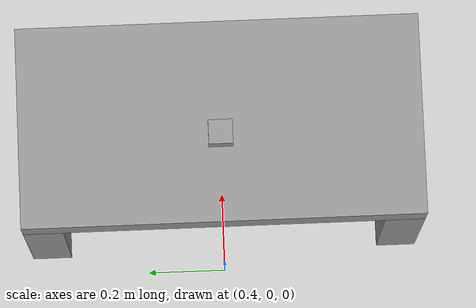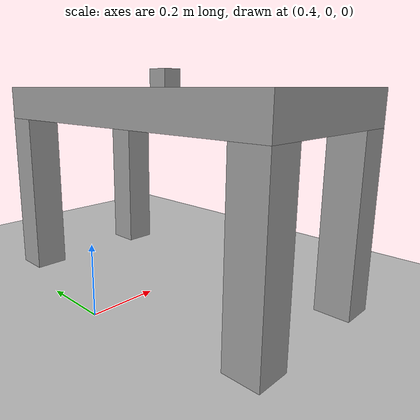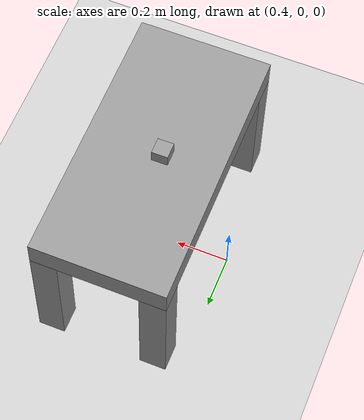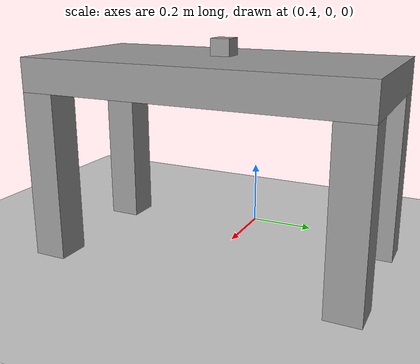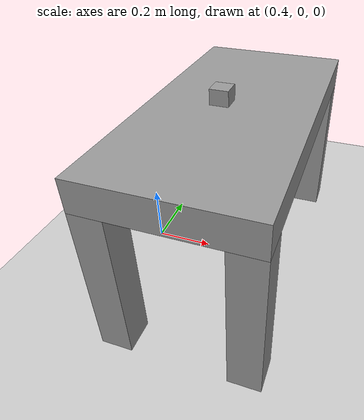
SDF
<sdf version="1.6">
 <world name="default">
  <light name="sun" type="directional">
   <pose>0 0 10 0 -0 0</pose>
   <diffuse>0.8 0.8 0.8 1</diffuse>
   <specular>0.2 0.2 0.2 1</specular>
   <attenuation>
    <range>1000</range>
    <constant>0.9</constant>
    <linear>0.01</linear>
    <quadratic>0.001</quadratic>
   </attenuation>
   <direction>-0.5 0.1 -0.9</direction>
  </light>
  <model name="ground_plane">
   <static>1</static>
   <link name="link">
    <collision name="collision">
     <geometry><plane><normal>0 0 1</normal><size>100 100</size></plane></geometry>
     <surface>
      <contact><collide_bitmask>65535</collide_bitmask></contact>
      <friction><ode><mu>100</mu><mu2>50</mu2></ode></friction>
     </surface>
    </collision>
    <visual name="visual">
     <cast_shadows>0</cast_shadows>
     <geometry><plane><normal>0 0 1</normal><size>100 100</size></plane></geometry>
     <material>
      <script><uri>file://media/materials/scripts/gazebo.material</uri><name>Gazebo/Grey</name></script>
     </material>
    </visual>
   </link>
  </model>
  <gravity>0 0 -9.8</gravity>
  <magnetic_field>6e-06 2.3e-05 -4.2e-05</magnetic_field>
  <atmosphere type="adiabatic"/>
  <physics name="default_physics" default="0" type="ode">
   <max_step_size>0.001</max_step_size>
   <real_time_factor>1</real_time_factor>
   <real_time_update_rate>1000</real_time_update_rate>
  </physics>
  <scene><ambient>0.4 0.4 0.4 1</ambient><background>0.7 0.7 0.7 1</background><shadows>1</shadows></scene>
  <audio><device>default</device></audio>
  <spherical_coordinates>
   <surface_model>EARTH_WGS84</surface_model>
   <latitude_deg>0</latitude_deg>
   <longitude_deg>0</longitude_deg>
   <elevation>0</elevation>
   <heading_deg>0</heading_deg>
  </spherical_coordinates>
  <model name="Franka_table">
   <link name="link_0">
    <inertial>
     <mass>1</mass>
     <inertia>
      <ixx>0.166667</ixx>
      <ixy>0</ixy>
      <ixz>0</ixz>
      <iyy>0.166667</iyy>
      <iyz>0</iyz>
      <izz>0.166667</izz>
     </inertia>
    </inertial>
    <pose>-0.2 -0.45 -0.06 0 -0 0</pose>
    <visual name="visual">
     <geometry><box><size>0.1 0.1 0.5</size></box></geometry>
     <material>
      <lighting>1</lighting>
      <script><uri>file://media/materials/scripts/gazebo.material</uri><name>Gazebo/Grey</name></script>
      <shader type="pixel"><normal_map>__default__</normal_map></shader>
      <ambient>0.3 0.3 0.3 1</ambient>
      <diffuse>0.7 0.7 0.7 1</diffuse>
      <specular>0.01 0.01 0.01 1</specular>
      <emissive>0 0 0 1</emissive>
     </material>
    </visual>
    <collision name="collision">
     <geometry><box><size>0.1 0.1 0.5</size></box></geometry>
     <surface>
      <friction>
       <ode><mu>1</mu><mu2>1</mu2><fdir1>0 0 0</fdir1><slip1>0</slip1><slip2>0</slip2></ode>
       <torsional>
        <coefficient>1</coefficient>
        <patch_radius>0</patch_radius>
        <surface_radius>0</surface_radius>
        <use_patch_radius>1</use_patch_radius>
        <ode><slip>0</slip></ode>
       </torsional>
      </friction>
      <bounce><restitution_coefficient>0</restitution_coefficient><threshold>1e+06</threshold></bounce>
      <contact>
       <collide_without_contact>0</collide_without_contact>
       <collide_without_contact_bitmask>1</collide_without_contact_bitmask>
       <collide_bitmask>1</collide_bitmask>
       <ode>
        <soft_cfm>0</soft_cfm>
        <soft_erp>0.2</soft_erp>
        <kp>1e+13</kp>
        <kd>1</kd>
        <max_vel>0.01</max_vel>
        <min_depth>0</min_depth>
       </ode>
       <bullet>
        <split_impulse>1</split_impulse>
        <split_impulse_penetration_threshold>-0.01</split_impulse_penetration_threshold>
        <soft_cfm>0</soft_cfm>
        <soft_erp>0.2</soft_erp>
        <kp>1e+13</kp>
        <kd>1</kd>
       </bullet>
      </contact>
     </surface>
    </collision>
   </link>
   <link name="link_0_clone">
    <inertial>
     <mass>1</mass>
     <inertia>
      <ixx>0.166667</ixx>
      <ixy>0</ixy>
      <ixz>0</ixz>
      <iyy>0.166667</iyy>
      <iyz>0</iyz>
      <izz>0.166667</izz>
     </inertia>
    </inertial>
    <pose>-0.2 0.45 -0.06 0 -0 0</pose>
    <visual name="visual">
     <geometry><box><size>0.1 0.1 0.5</size></box></geometry>
     <material>
      <lighting>1</lighting>
      <script><uri>file://media/materials/scripts/gazebo.material</uri><name>Gazebo/Grey</name></script>
      <shader type="pixel"><normal_map>__default__</normal_map></shader>
      <ambient>0.3 0.3 0.3 1</ambient>
      <diffuse>0.7 0.7 0.7 1</diffuse>
      <specular>0.01 0.01 0.01 1</specular>
      <emissive>0 0 0 1</emissive>
     </material>
    </visual>
    <collision name="collision">
     <geometry><box><size>0.1 0.1 0.5</size></box></geometry>
     <surface>
      <friction>
       <ode><mu>1</mu><mu2>1</mu2><fdir1>0 0 0</fdir1><slip1>0</slip1><slip2>0</slip2></ode>
       <torsional>
        <coefficient>1</coefficient>
        <patch_radius>0</patch_radius>
        <surface_radius>0</surface_radius>
        <use_patch_radius>1</use_patch_radius>
        <ode><slip>0</slip></ode>
       </torsional>
      </friction>
      <bounce><restitution_coefficient>0</restitution_coefficient><threshold>1e+06</threshold></bounce>
      <contact>
       <collide_without_contact>0</collide_without_contact>
       <collide_without_contact_bitmask>1</collide_without_contact_bitmask>
       <collide_bitmask>1</collide_bitmask>
       <ode>
        <soft_cfm>0</soft_cfm>
        <soft_erp>0.2</soft_erp>
        <kp>1e+13</kp>
        <kd>1</kd>
        <max_vel>0.01</max_vel>
        <min_depth>0</min_depth>
       </ode>
       <bullet>
        <split_impulse>1</split_impulse>
        <split_impulse_penetration_threshold>-0.01</split_impulse_penetration_threshold>
        <soft_cfm>0</soft_cfm>
        <soft_erp>0.2</soft_erp>
        <kp>1e+13</kp>
        <kd>1</kd>
       </bullet>
      </contact>
     </surface>
    </collision>
   </link>
   <link name="link_0_clone_0">
    <inertial>
     <mass>1</mass>
     <inertia>
      <ixx>0.166667</ixx>
      <ixy>0</ixy>
      <ixz>0</ixz>
      <iyy>0.166667</iyy>
      <iyz>0</iyz>
      <izz>0.166667</izz>
     </inertia>
    </inertial>
    <pose>0.2 0.45 -0.06 0 -0 0</pose>
    <visual name="visual">
     <geometry><box><size>0.1 0.1 0.5</size></box></geometry>
     <material>
      <lighting>1</lighting>
      <script><uri>file://media/materials/scripts/gazebo.material</uri><name>Gazebo/Grey</name></script>
      <shader type="pixel"><normal_map>__default__</normal_map></shader>
      <ambient>0.3 0.3 0.3 1</ambient>
      <diffuse>0.7 0.7 0.7 1</diffuse>
      <specular>0.01 0.01 0.01 1</specular>
      <emissive>0 0 0 1</emissive>
     </material>
    </visual>
    <collision name="collision">
     <geometry><box><size>0.1 0.1 0.5</size></box></geometry>
     <surface>
      <friction>
       <ode><mu>1</mu><mu2>1</mu2><fdir1>0 0 0</fdir1><slip1>0</slip1><slip2>0</slip2></ode>
       <torsional>
        <coefficient>1</coefficient>
        <patch_radius>0</patch_radius>
        <surface_radius>0</surface_radius>
        <use_patch_radius>1</use_patch_radius>
        <ode><slip>0</slip></ode>
       </torsional>
      </friction>
      <bounce><restitution_coefficient>0</restitution_coefficient><threshold>1e+06</threshold></bounce>
      <contact>
       <collide_without_contact>0</collide_without_contact>
       <collide_without_contact_bitmask>1</collide_without_contact_bitmask>
       <collide_bitmask>1</collide_bitmask>
       <ode>
        <soft_cfm>0</soft_cfm>
        <soft_erp>0.2</soft_erp>
        <kp>1e+13</kp>
        <kd>1</kd>
        <max_vel>0.01</max_vel>
        <min_depth>0</min_depth>
       </ode>
       <bullet>
        <split_impulse>1</split_impulse>
        <split_impulse_penetration_threshold>-0.01</split_impulse_penetration_threshold>
        <soft_cfm>0</soft_cfm>
        <soft_erp>0.2</soft_erp>
        <kp>1e+13</kp>
        <kd>1</kd>
       </bullet>
      </contact>
     </surface>
    </collision>
   </link>
   <link name="link_0_clone_1">
    <inertial>
     <mass>1</mass>
     <inertia>
      <ixx>0.166667</ixx>
      <ixy>0</ixy>
      <ixz>0</ixz>
      <iyy>0.166667</iyy>
      <iyz>0</iyz>
      <izz>0.166667</izz>
     </inertia>
    </inertial>
    <pose>0.2 -0.45 -0.06 0 -0 0</pose>
    <visual name="visual">
     <geometry><box><size>0.1 0.1 0.5</size></box></geometry>
     <material>
      <lighting>1</lighting>
      <script><uri>file://media/materials/scripts/gazebo.material</uri><name>Gazebo/Grey</name></script>
      <shader type="pixel"><normal_map>__default__</normal_map></shader>
      <ambient>0.3 0.3 0.3 1</ambient>
      <diffuse>0.7 0.7 0.7 1</diffuse>
      <specular>0.01 0.01 0.01 1</specular>
      <emissive>0 0 0 1</emissive>
     </material>
    </visual>
    <collision name="collision">
     <geometry><box><size>0.1 0.1 0.5</size></box></geometry>
     <surface>
      <friction>
       <ode><mu>1</mu><mu2>1</mu2><fdir1>0 0 0</fdir1><slip1>0</slip1><slip2>0</slip2></ode>
       <torsional>
        <coefficient>1</coefficient>
        <patch_radius>0</patch_radius>
        <surface_radius>0</surface_radius>
        <use_patch_radius>1</use_patch_radius>
        <ode><slip>0</slip></ode>
       </torsional>
      </friction>
      <bounce><restitution_coefficient>0</restitution_coefficient><threshold>1e+06</threshold></bounce>
      <contact>
       <collide_without_contact>0</collide_without_contact>
       <collide_without_contact_bitmask>1</collide_without_contact_bitmask>
       <collide_bitmask>1</collide_bitmask>
       <ode>
        <soft_cfm>0</soft_cfm>
        <soft_erp>0.2</soft_erp>
        <kp>1e+13</kp>
        <kd>1</kd>
        <max_vel>0.01</max_vel>
        <min_depth>0</min_depth>
       </ode>
       <bullet>
        <split_impulse>1</split_impulse>
        <split_impulse_penetration_threshold>-0.01</split_impulse_penetration_threshold>
        <soft_cfm>0</soft_cfm>
        <soft_erp>0.2</soft_erp>
        <kp>1e+13</kp>
        <kd>1</kd>
       </bullet>
      </contact>
     </surface>
    </collision>
   </link>
   <link name="link_1">
    <inertial>
     <mass>1</mass>
     <inertia>
      <ixx>0.166667</ixx>
      <ixy>0</ixy>
      <ixz>0</ixz>
      <iyy>0.166667</iyy>
      <iyz>0</iyz>
      <izz>0.166667</izz>
     </inertia>
    </inertial>
    <pose>0 0 0.24 0 -0 0</pose>
    <visual name="visual">
     <geometry><box><size>0.5 1 0.1</size></box></geometry>
     <material>
      <lighting>1</lighting>
      <script><uri>file://media/materials/scripts/gazebo.material</uri><name>Gazebo/Grey</name></script>
      <shader type="pixel"><normal_map>__default__</normal_map></shader>
      <ambient>0.3 0.3 0.3 1</ambient>
      <diffuse>0.7 0.7 0.7 1</diffuse>
      <specular>0.01 0.01 0.01 1</specular>
      <emissive>0 0 0 1</emissive>
     </material>
    </visual>
    <collision name="collision">
     <geometry><box><size>0.5 1 0.1</size></box></geometry>
     <surface>
      <friction>
       <ode><mu>1</mu><mu2>1</mu2><fdir1>0 0 0</fdir1><slip1>0</slip1><slip2>0</slip2></ode>
       <torsional>
        <coefficient>1</coefficient>
        <patch_radius>0</patch_radius>
        <surface_radius>0</surface_radius>
        <use_patch_radius>1</use_patch_radius>
        <ode><slip>0</slip></ode>
       </torsional>
      </friction>
      <bounce><restitution_coefficient>0</restitution_coefficient><threshold>1e+06</threshold></bounce>
      <contact>
       <collide_without_contact>0</collide_without_contact>
       <collide_without_contact_bitmask>1</collide_without_contact_bitmask>
       <collide_bitmask>1</collide_bitmask>
       <ode>
        <soft_cfm>0</soft_cfm>
        <soft_erp>0.2</soft_erp>
        <kp>1e+13</kp>
        <kd>1</kd>
        <max_vel>0.01</max_vel>
        <min_depth>0</min_depth>
       </ode>
       <bullet>
        <split_impulse>1</split_impulse>
        <split_impulse_penetration_threshold>-0.01</split_impulse_penetration_threshold>
        <soft_cfm>0</soft_cfm>
        <soft_erp>0.2</soft_erp>
        <kp>1e+13</kp>
        <kd>1</kd>
       </bullet>
      </contact>
     </surface>
    </collision>
   </link>
   <joint name="link_0_JOINT_2" type="fixed">
    <parent>link_0</parent>
    <child>link_1</child>
    <physics>
     <ode><limit><cfm>0</cfm><erp>0.2</erp></limit><suspension><cfm>0</cfm><erp>0.2</erp></suspension></ode>
    </physics>
   </joint>
   <joint name="link_0_clone_0_JOINT_1" type="fixed">
    <parent>link_0_clone_0</parent>
    <child>link_1</child>
    <physics>
     <ode><limit><cfm>0</cfm><erp>0.2</erp></limit><suspension><cfm>0</cfm><erp>0.2</erp></suspension></ode>
    </physics>
   </joint>
   <joint name="link_0_clone_1_JOINT_3" type="fixed">
    <parent>link_0_clone_1</parent>
    <child>link_1</child>
    <physics>
     <ode><limit><cfm>0</cfm><erp>0.2</erp></limit><suspension><cfm>0</cfm><erp>0.2</erp></suspension></ode>
    </physics>
   </joint>
   <joint name="link_0_clone_JOINT_0" type="fixed">
    <parent>link_0_clone</parent>
    <child>link_1</child>
    <physics>
     <ode><limit><cfm>0</cfm><erp>0.2</erp></limit><suspension><cfm>0</cfm><erp>0.2</erp></suspension></ode>
    </physics>
   </joint>
   <static>0</static>
   <pose>0.699773 0.000258 0.31 0 -2e-06 5.2e-05</pose>
  </model>
  <model name="small_cube">
   <link name="link">
    <inertial>
     <mass>1</mass>
     <inertia>
      <ixx>0.166667</ixx>
      <ixy>0</ixy>
      <ixz>0</ixz>
      <iyy>0.166667</iyy>
      <iyz>0</iyz>
      <izz>0.166667</izz>
     </inertia>
    </inertial>
    <visual name="visual">
     <geometry><box><size>0.06 0.06 0.05</size></box></geometry>
     <material>
      <script><name>Gazebo/Grey</name><uri>file://media/materials/scripts/gazebo.material</uri></script>
      <shader type="pixel"><normal_map>__default__</normal_map></shader>
      <ambient>0.3 0.3 0.3 1</ambient>
      <diffuse>0.7 0.7 0.7 1</diffuse>
      <specular>0.01 0.01 0.01 1</specular>
      <emissive>0 0 0 1</emissive>
     </material>
    </visual>
    <collision name="collision">
     <geometry><box><size>0.06 0.06 0.05</size></box></geometry>
     <surface>
      <friction>
       <ode><mu>1</mu><mu2>1</mu2><fdir1>0 0 0</fdir1><slip1>0</slip1><slip2>0</slip2></ode>
       <torsional>
        <coefficient>1</coefficient>
        <patch_radius>0</patch_radius>
        <surface_radius>0</surface_radius>
        <use_patch_radius>1</use_patch_radius>
        <ode><slip>0</slip></ode>
       </torsional>
      </friction>
      <bounce><restitution_coefficient>0</restitution_coefficient><threshold>1e+06</threshold></bounce>
      <contact>
       <collide_without_contact>0</collide_without_contact>
       <collide_without_contact_bitmask>1</collide_without_contact_bitmask>
       <collide_bitmask>1</collide_bitmask>
       <ode>
        <soft_cfm>0</soft_cfm>
        <soft_erp>0.2</soft_erp>
        <kp>1e+13</kp>
        <kd>1</kd>
        <max_vel>0.01</max_vel>
        <min_depth>0</min_depth>
       </ode>
       <bullet>
        <split_impulse>1</split_impulse>
        <split_impulse_penetration_threshold>-0.01</split_impulse_penetration_threshold>
        <soft_cfm>0</soft_cfm>
        <soft_erp>0.2</soft_erp>
        <kp>1e+13</kp>
        <kd>1</kd>
       </bullet>
      </contact>
     </surface>
    </collision>
   </link>
   <static>0</static>
   <pose>0.665571 0.001018 0.625 2e-06 -1e-06 0.002064</pose>
  </model>
 </world>
</sdf>
